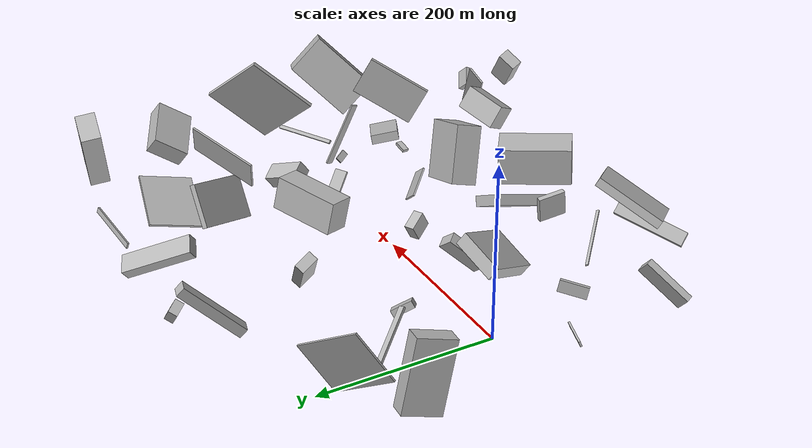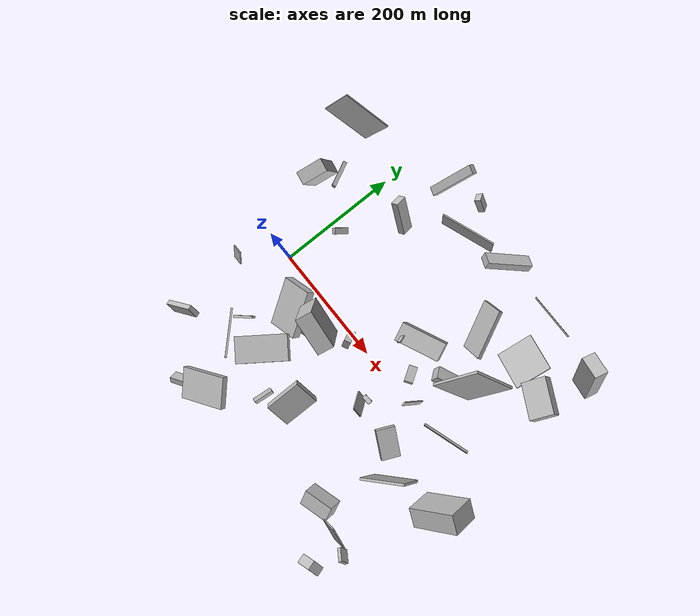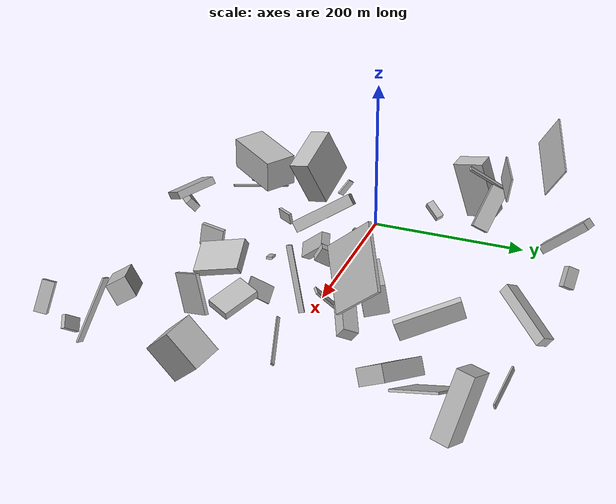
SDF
<sdf version="1.6">
 <world name="default">
  <scene>
   <sky><clouds><speed>12</speed></clouds></sky>
   <ambient>0.4 0.4 0.4 1</ambient>
   <background>0.7 0.7 0.7 1</background>
   <shadows>1</shadows>
  </scene>
  <gravity>0 0 -9.8066</gravity>
  <magnetic_field>6e-06 2.3e-05 -4.2e-05</magnetic_field>
  <physics default="0" name="default_physics" type="ode">
   <ode>
    <solver>
     <type>quick</type>
     <iters>10</iters>
     <sor>1.0</sor>
     <use_dynamic_moi_rescaling>0</use_dynamic_moi_rescaling>
    </solver>
    <constraints>
     <cfm>0</cfm>
     <erp>0.2</erp>
     <contact_max_correcting_vel>100</contact_max_correcting_vel>
     <contact_surface_layer>0.001</contact_surface_layer>
    </constraints>
   </ode>
   <max_step_size>0.004</max_step_size>
   <real_time_factor>1</real_time_factor>
   <real_time_update_rate>250</real_time_update_rate>
  </physics>
  <light name="sun" type="directional">
   <pose>0 0 10 0 0 0</pose>
   <diffuse>0.8 0.8 0.8 1</diffuse>
   <specular>0.2 0.2 0.2 1</specular>
   <attenuation>
    <range>1000</range>
    <constant>0.9</constant>
    <linear>0.01</linear>
    <quadratic>0.001</quadratic>
   </attenuation>
   <direction>-0.5 0.1 -0.9</direction>
  </light>
  <model name="building_1">
   <static>0</static>
   <pose>338.6328816949489 -208.21183348277424 46.11304198322759 0.4572288680553274 -1.023384175593099 -1.6443028458194113</pose>
   <link name="link">
    <gravity>0</gravity>
    <pose>0 0 13.0 0 0 0</pose>
    <collision name="collision"><geometry><box><size>27 48 26</size></box></geometry></collision>
    <visual name="visual">
     <cast_shadows>0</cast_shadows>
     <geometry><box><size>27 48 26</size></box></geometry>
     <material>
      <script>
       <uri>model://HANNAS_wall/materials/scripts</uri>
       <uri>model://HANNAS_wall/materials/textures</uri>
       <name>vrc/HANNAS_wall</name>
      </script>
     </material>
    </visual>
   </link>
  </model>
  <model name="building_2">
   <static>0</static>
   <pose>326.370583474668 -61.1838974823882 55.36963363870868 -0.19229323015173608 0.2361429934656292 -0.48336720357062135</pose>
   <link name="link">
    <gravity>0</gravity>
    <pose>0 0 5.0 0 0 0</pose>
    <collision name="collision"><geometry><box><size>48 30 10</size></box></geometry></collision>
    <visual name="visual">
     <cast_shadows>0</cast_shadows>
     <geometry><box><size>48 30 10</size></box></geometry>
     <material>
      <script>
       <uri>model://HANNAS_wall/materials/scripts</uri>
       <uri>model://HANNAS_wall/materials/textures</uri>
       <name>vrc/HANNAS_wall</name>
      </script>
     </material>
    </visual>
   </link>
  </model>
  <model name="building_3">
   <static>0</static>
   <pose>168.22404401734244 -13.529662765484698 31.840678436858376 0.0626079481214052 0.513105849578444 2.0409422818210565</pose>
   <link name="link">
    <gravity>0</gravity>
    <pose>0 0 10.0 0 0 0</pose>
    <collision name="collision"><geometry><box><size>21 11 20</size></box></geometry></collision>
    <visual name="visual">
     <cast_shadows>0</cast_shadows>
     <geometry><box><size>21 11 20</size></box></geometry>
     <material>
      <script>
       <uri>model://HANNAS_wall/materials/scripts</uri>
       <uri>model://HANNAS_wall/materials/textures</uri>
       <name>vrc/HANNAS_wall</name>
      </script>
     </material>
    </visual>
   </link>
  </model>
  <model name="building_4">
   <static>0</static>
   <pose>89.21328112535 -102.3202754035337 122.89191621156849 2.0327146724492584 -1.513534038956261 0.4915451744406708</pose>
   <link name="link">
    <gravity>0</gravity>
    <pose>0 0 19.5 0 0 0</pose>
    <collision name="collision"><geometry><box><size>39 75 39</size></box></geometry></collision>
    <visual name="visual">
     <cast_shadows>0</cast_shadows>
     <geometry><box><size>39 75 39</size></box></geometry>
     <material>
      <script>
       <uri>model://HANNAS_wall/materials/scripts</uri>
       <uri>model://HANNAS_wall/materials/textures</uri>
       <name>vrc/HANNAS_wall</name>
      </script>
     </material>
    </visual>
   </link>
  </model>
  <model name="building_5">
   <static>0</static>
   <pose>240.8950151724281 80.02816638658423 37.09292190675885 0.10582511486270119 0.15967997886610574 -1.1332028884733665</pose>
   <link name="link">
    <gravity>0</gravity>
    <pose>0 0 18.0 0 0 0</pose>
    <collision name="collision"><geometry><box><size>30 73 36</size></box></geometry></collision>
    <visual name="visual">
     <cast_shadows>0</cast_shadows>
     <geometry><box><size>30 73 36</size></box></geometry>
     <material>
      <script>
       <uri>model://HANNAS_wall/materials/scripts</uri>
       <uri>model://HANNAS_wall/materials/textures</uri>
       <name>vrc/HANNAS_wall</name>
      </script>
     </material>
    </visual>
   </link>
  </model>
  <model name="building_6">
   <static>0</static>
   <pose>23.178486218286494 90.48624858635793 51.353737311372015 -1.9588664292273428 0.9702372690606684 -2.572702174878882</pose>
   <link name="link">
    <gravity>0</gravity>
    <pose>0 0 5.0 0 0 0</pose>
    <collision name="collision"><geometry><box><size>8 24 10</size></box></geometry></collision>
    <visual name="visual">
     <cast_shadows>0</cast_shadows>
     <geometry><box><size>8 24 10</size></box></geometry>
     <material>
      <script>
       <uri>model://HANNAS_wall/materials/scripts</uri>
       <uri>model://HANNAS_wall/materials/textures</uri>
       <name>vrc/HANNAS_wall</name>
      </script>
     </material>
    </visual>
   </link>
  </model>
  <model name="building_7">
   <static>0</static>
   <pose>250.47606680856293 -43.758174373934196 79.02998661161615 -1.3215775211526049 0.06926389244565694 -1.4680392764214167</pose>
   <link name="link">
    <gravity>0</gravity>
    <pose>0 0 7.0 0 0 0</pose>
    <collision name="collision"><geometry><box><size>7 3 14</size></box></geometry></collision>
    <visual name="visual">
     <cast_shadows>0</cast_shadows>
     <geometry><box><size>7 3 14</size></box></geometry>
     <material>
      <script>
       <uri>model://HANNAS_wall/materials/scripts</uri>
       <uri>model://HANNAS_wall/materials/textures</uri>
       <name>vrc/HANNAS_wall</name>
      </script>
     </material>
    </visual>
   </link>
  </model>
  <model name="building_8">
   <static>0</static>
   <pose>395.5038406000807 173.60981117347646 64.98285832230383 -1.2659726374269156 0.5487515739228904 -1.9215913843418335</pose>
   <link name="link">
    <gravity>0</gravity>
    <pose>0 0 29.5 0 0 0</pose>
    <collision name="collision"><geometry><box><size>40 20 59</size></box></geometry></collision>
    <visual name="visual">
     <cast_shadows>0</cast_shadows>
     <geometry><box><size>40 20 59</size></box></geometry>
     <material>
      <script>
       <uri>model://HANNAS_wall/materials/scripts</uri>
       <uri>model://HANNAS_wall/materials/textures</uri>
       <name>vrc/HANNAS_wall</name>
      </script>
     </material>
    </visual>
   </link>
  </model>
  <model name="building_9">
   <static>0</static>
   <pose>247.15976827285297 -48.00724390021814 20.384949326163664 -0.8327314708521012 0.513166770340597 -2.0857333946233414</pose>
   <link name="link">
    <gravity>0</gravity>
    <pose>0 0 17.0 0 0 0</pose>
    <collision name="collision"><geometry><box><size>2 22 34</size></box></geometry></collision>
    <visual name="visual">
     <cast_shadows>0</cast_shadows>
     <geometry><box><size>2 22 34</size></box></geometry>
     <material>
      <script>
       <uri>model://HANNAS_wall/materials/scripts</uri>
       <uri>model://HANNAS_wall/materials/textures</uri>
       <name>vrc/HANNAS_wall</name>
      </script>
     </material>
    </visual>
   </link>
  </model>
  <model name="building_10">
   <static>0</static>
   <pose>187.33312188509382 -110.42968778057674 29.738503021701213 -1.8818112404174425 -0.4873807845101981 -3.0088287167011507</pose>
   <link name="link">
    <gravity>0</gravity>
    <pose>0 0 31.5 0 0 0</pose>
    <collision name="collision"><geometry><box><size>44 12 63</size></box></geometry></collision>
    <visual name="visual">
     <cast_shadows>0</cast_shadows>
     <geometry><box><size>44 12 63</size></box></geometry>
     <material>
      <script>
       <uri>model://HANNAS_wall/materials/scripts</uri>
       <uri>model://HANNAS_wall/materials/textures</uri>
       <name>vrc/HANNAS_wall</name>
      </script>
     </material>
    </visual>
   </link>
  </model>
  <model name="building_11">
   <static>0</static>
   <pose>112.55504870964995 -41.66017299910679 29.174540301287415 2.5463542830096872 -0.7069111268233962 1.0839916701709835</pose>
   <link name="link">
    <gravity>0</gravity>
    <pose>0 0 10.0 0 0 0</pose>
    <collision name="collision"><geometry><box><size>49 12 20</size></box></geometry></collision>
    <visual name="visual">
     <cast_shadows>0</cast_shadows>
     <geometry><box><size>49 12 20</size></box></geometry>
     <material>
      <script>
       <uri>model://HANNAS_wall/materials/scripts</uri>
       <uri>model://HANNAS_wall/materials/textures</uri>
       <name>vrc/HANNAS_wall</name>
      </script>
     </material>
    </visual>
   </link>
  </model>
  <model name="building_12">
   <static>0</static>
   <pose>71.23566438202866 -172.50643372856476 60.25383047438223 -2.327244930818883 -1.224562865764076 1.5599239814738401</pose>
   <link name="link">
    <gravity>0</gravity>
    <pose>0 0 40.0 0 0 0</pose>
    <collision name="collision"><geometry><box><size>2 3 80</size></box></geometry></collision>
    <visual name="visual">
     <cast_shadows>0</cast_shadows>
     <geometry><box><size>2 3 80</size></box></geometry>
     <material>
      <script>
       <uri>model://HANNAS_wall/materials/scripts</uri>
       <uri>model://HANNAS_wall/materials/textures</uri>
       <name>vrc/HANNAS_wall</name>
      </script>
     </material>
    </visual>
   </link>
  </model>
  <model name="building_13">
   <static>0</static>
   <pose>-43.65097188481653 -61.97770021165047 22.92044745692983 -2.2259189441574847 0.42913450245115947 1.287272131480472</pose>
   <link name="link">
    <gravity>0</gravity>
    <pose>0 0 11.5 0 0 0</pose>
    <collision name="collision"><geometry><box><size>2 23 23</size></box></geometry></collision>
    <visual name="visual">
     <cast_shadows>0</cast_shadows>
     <geometry><box><size>2 23 23</size></box></geometry>
     <material>
      <script>
       <uri>model://HANNAS_wall/materials/scripts</uri>
       <uri>model://HANNAS_wall/materials/textures</uri>
       <name>vrc/HANNAS_wall</name>
      </script>
     </material>
    </visual>
   </link>
  </model>
  <model name="building_14">
   <static>0</static>
   <pose>309.1904975737257 65.76811558177911 44.7926098493723 -0.43887572906305355 -0.465129263502837 -0.9322276968183582</pose>
   <link name="link">
    <gravity>0</gravity>
    <pose>0 0 8.0 0 0 0</pose>
    <collision name="collision"><geometry><box><size>20 43 16</size></box></geometry></collision>
    <visual name="visual">
     <cast_shadows>0</cast_shadows>
     <geometry><box><size>20 43 16</size></box></geometry>
     <material>
      <script>
       <uri>model://HANNAS_wall/materials/scripts</uri>
       <uri>model://HANNAS_wall/materials/textures</uri>
       <name>vrc/HANNAS_wall</name>
      </script>
     </material>
    </visual>
   </link>
  </model>
  <model name="building_15">
   <static>0</static>
   <pose>385.6673655762786 -213.3494130210364 45.32864751154012 2.0888946115282674 -0.9676655794925265 2.758086803733049</pose>
   <link name="link">
    <gravity>0</gravity>
    <pose>0 0 1.0 0 0 0</pose>
    <collision name="collision"><geometry><box><size>80 23 2</size></box></geometry></collision>
    <visual name="visual">
     <cast_shadows>0</cast_shadows>
     <geometry><box><size>80 23 2</size></box></geometry>
     <material>
      <script>
       <uri>model://HANNAS_wall/materials/scripts</uri>
       <uri>model://HANNAS_wall/materials/textures</uri>
       <name>vrc/HANNAS_wall</name>
      </script>
     </material>
    </visual>
   </link>
  </model>
  <model name="building_16">
   <static>0</static>
   <pose>303.35936867569797 9.669289088509869 87.95902885679925 2.4005804729496547 1.2054157736602324 0.8802027306928133</pose>
   <link name="link">
    <gravity>0</gravity>
    <pose>0 0 3.5 0 0 0</pose>
    <collision name="collision"><geometry><box><size>80 2 7</size></box></geometry></collision>
    <visual name="visual">
     <cast_shadows>0</cast_shadows>
     <geometry><box><size>80 2 7</size></box></geometry>
     <material>
      <script>
       <uri>model://HANNAS_wall/materials/scripts</uri>
       <uri>model://HANNAS_wall/materials/textures</uri>
       <name>vrc/HANNAS_wall</name>
      </script>
     </material>
    </visual>
   </link>
  </model>
  <model name="building_17">
   <static>0</static>
   <pose>370.3239939297324 214.36255686929604 28.40209971229611 1.8544793708758611 -0.4393777092770607 -0.24323230617416094</pose>
   <link name="link">
    <gravity>0</gravity>
    <pose>0 0 30.5 0 0 0</pose>
    <collision name="collision"><geometry><box><size>65 3 61</size></box></geometry></collision>
    <visual name="visual">
     <cast_shadows>0</cast_shadows>
     <geometry><box><size>65 3 61</size></box></geometry>
     <material>
      <script>
       <uri>model://HANNAS_wall/materials/scripts</uri>
       <uri>model://HANNAS_wall/materials/textures</uri>
       <name>vrc/HANNAS_wall</name>
      </script>
     </material>
    </visual>
   </link>
  </model>
  <model name="building_18">
   <static>0</static>
   <pose>-44.08732819850629 -182.19958805405935 36.49535094313417 2.4711410923841997 0.31266463031677244 1.9545019871675613</pose>
   <link name="link">
    <gravity>0</gravity>
    <pose>0 0 10.5 0 0 0</pose>
    <collision name="collision"><geometry><box><size>8 56 21</size></box></geometry></collision>
    <visual name="visual">
     <cast_shadows>0</cast_shadows>
     <geometry><box><size>8 56 21</size></box></geometry>
     <material>
      <script>
       <uri>model://HANNAS_wall/materials/scripts</uri>
       <uri>model://HANNAS_wall/materials/textures</uri>
       <name>vrc/HANNAS_wall</name>
      </script>
     </material>
    </visual>
   </link>
  </model>
  <model name="building_19">
   <static>0</static>
   <pose>368.4411346294443 -91.30569417470106 84.56187963490568 1.6128923421416628 1.0999573084103693 0.8713865351303532</pose>
   <link name="link">
    <gravity>0</gravity>
    <pose>0 0 2.0 0 0 0</pose>
    <collision name="collision"><geometry><box><size>47 73 4</size></box></geometry></collision>
    <visual name="visual">
     <cast_shadows>0</cast_shadows>
     <geometry><box><size>47 73 4</size></box></geometry>
     <material>
      <script>
       <uri>model://HANNAS_wall/materials/scripts</uri>
       <uri>model://HANNAS_wall/materials/textures</uri>
       <name>vrc/HANNAS_wall</name>
      </script>
     </material>
    </visual>
   </link>
  </model>
  <model name="building_20">
   <static>0</static>
   <pose>71.20246633546083 -50.16166786804449 50.75045880358577 2.6208232122685673 -0.4435798415892773 2.0812010661827776</pose>
   <link name="link">
    <gravity>0</gravity>
    <pose>0 0 7.5 0 0 0</pose>
    <collision name="collision"><geometry><box><size>80 51 15</size></box></geometry></collision>
    <visual name="visual">
     <cast_shadows>0</cast_shadows>
     <geometry><box><size>80 51 15</size></box></geometry>
     <material>
      <script>
       <uri>model://HANNAS_wall/materials/scripts</uri>
       <uri>model://HANNAS_wall/materials/textures</uri>
       <name>vrc/HANNAS_wall</name>
      </script>
     </material>
    </visual>
   </link>
  </model>
  <model name="building_21">
   <static>0</static>
   <pose>102.55716518397804 -244.79936414993392 46.77603564303312 1.0683628899889894 -1.0235325301921319 -1.9248350715982212</pose>
   <link name="link">
    <gravity>0</gravity>
    <pose>0 0 25.0 0 0 0</pose>
    <collision name="collision"><geometry><box><size>10 80 50</size></box></geometry></collision>
    <visual name="visual">
     <cast_shadows>0</cast_shadows>
     <geometry><box><size>10 80 50</size></box></geometry>
     <material>
      <script>
       <uri>model://HANNAS_wall/materials/scripts</uri>
       <uri>model://HANNAS_wall/materials/textures</uri>
       <name>vrc/HANNAS_wall</name>
      </script>
     </material>
    </visual>
   </link>
  </model>
  <model name="building_22">
   <static>0</static>
   <pose>287.5756499765995 162.85952351488433 55.61171762824705 -1.0304399685162626 -0.3129899035539973 2.0570425210511822</pose>
   <link name="link">
    <gravity>0</gravity>
    <pose>0 0 3.0 0 0 0</pose>
    <collision name="collision"><geometry><box><size>80 47 6</size></box></geometry></collision>
    <visual name="visual">
     <cast_shadows>0</cast_shadows>
     <geometry><box><size>80 47 6</size></box></geometry>
     <material>
      <script>
       <uri>model://HANNAS_wall/materials/scripts</uri>
       <uri>model://HANNAS_wall/materials/textures</uri>
       <name>vrc/HANNAS_wall</name>
      </script>
     </material>
    </visual>
   </link>
  </model>
  <model name="building_23">
   <static>0</static>
   <pose>205.28862027843343 230.2512990216993 66.82112827373452 2.0523521751146507 0.48211887015066285 2.7024676406422294</pose>
   <link name="link">
    <gravity>0</gravity>
    <pose>0 0 40.0 0 0 0</pose>
    <collision name="collision"><geometry><box><size>21 13 80</size></box></geometry></collision>
    <visual name="visual">
     <cast_shadows>0</cast_shadows>
     <geometry><box><size>21 13 80</size></box></geometry>
     <material>
      <script>
       <uri>model://HANNAS_wall/materials/scripts</uri>
       <uri>model://HANNAS_wall/materials/textures</uri>
       <name>vrc/HANNAS_wall</name>
      </script>
     </material>
    </visual>
   </link>
  </model>
  <model name="building_24">
   <static>0</static>
   <pose>66.2181470748453 -235.75113678840933 20.199080257436634 0.3548234627329046 0.6969542208967269 -0.7276177786905893</pose>
   <link name="link">
    <gravity>0</gravity>
    <pose>0 0 8.0 0 0 0</pose>
    <collision name="collision"><geometry><box><size>10 80 16</size></box></geometry></collision>
    <visual name="visual">
     <cast_shadows>0</cast_shadows>
     <geometry><box><size>10 80 16</size></box></geometry>
     <material>
      <script>
       <uri>model://HANNAS_wall/materials/scripts</uri>
       <uri>model://HANNAS_wall/materials/textures</uri>
       <name>vrc/HANNAS_wall</name>
      </script>
     </material>
    </visual>
   </link>
  </model>
  <model name="building_25">
   <static>0</static>
   <pose>29.219839794638826 -118.52452829965428 11.045401352206095 -2.9572581648138763 0.09042901204387054 -0.7274351207023483</pose>
   <link name="link">
    <gravity>0</gravity>
    <pose>0 0 7.0 0 0 0</pose>
    <collision name="collision"><geometry><box><size>4 32 14</size></box></geometry></collision>
    <visual name="visual">
     <cast_shadows>0</cast_shadows>
     <geometry><box><size>4 32 14</size></box></geometry>
     <material>
      <script>
       <uri>model://HANNAS_wall/materials/scripts</uri>
       <uri>model://HANNAS_wall/materials/textures</uri>
       <name>vrc/HANNAS_wall</name>
      </script>
     </material>
    </visual>
   </link>
  </model>
  <model name="building_26">
   <static>0</static>
   <pose>460.90170246255144 -45.672113673512385 55.81639384183421 0.7612308609746212 0.3091462837370078 -0.420320818513701</pose>
   <link name="link">
    <gravity>0</gravity>
    <pose>0 0 24.0 0 0 0</pose>
    <collision name="collision"><geometry><box><size>33 80 48</size></box></geometry></collision>
    <visual name="visual">
     <cast_shadows>0</cast_shadows>
     <geometry><box><size>33 80 48</size></box></geometry>
     <material>
      <script>
       <uri>model://HANNAS_wall/materials/scripts</uri>
       <uri>model://HANNAS_wall/materials/textures</uri>
       <name>vrc/HANNAS_wall</name>
      </script>
     </material>
    </visual>
   </link>
  </model>
  <model name="building_27">
   <static>0</static>
   <pose>-51.95055127516923 160.15596435888608 55.11931893049109 -0.90368737117193 -0.28491136804036166 -2.777121229837746</pose>
   <link name="link">
    <gravity>0</gravity>
    <pose>0 0 31.0 0 0 0</pose>
    <collision name="collision"><geometry><box><size>6 3 62</size></box></geometry></collision>
    <visual name="visual">
     <cast_shadows>0</cast_shadows>
     <geometry><box><size>6 3 62</size></box></geometry>
     <material>
      <script>
       <uri>model://HANNAS_wall/materials/scripts</uri>
       <uri>model://HANNAS_wall/materials/textures</uri>
       <name>vrc/HANNAS_wall</name>
      </script>
     </material>
    </visual>
   </link>
  </model>
  <model name="building_28">
   <static>0</static>
   <pose>424.73156798757617 -220.71956087857285 39.14166668272482 0.5758522341225835 -0.6103329534188533 -0.5272021191147985</pose>
   <link name="link">
    <gravity>0</gravity>
    <pose>0 0 8.0 0 0 0</pose>
    <collision name="collision"><geometry><box><size>22 6 16</size></box></geometry></collision>
    <visual name="visual">
     <cast_shadows>0</cast_shadows>
     <geometry><box><size>22 6 16</size></box></geometry>
     <material>
      <script>
       <uri>model://HANNAS_wall/materials/scripts</uri>
       <uri>model://HANNAS_wall/materials/textures</uri>
       <name>vrc/HANNAS_wall</name>
      </script>
     </material>
    </visual>
   </link>
  </model>
  <model name="building_29">
   <static>0</static>
   <pose>340.0533579107089 262.82959527295094 28.45691827376335 3.114865772242141 -0.30338868980504985 1.578251997082732</pose>
   <link name="link">
    <gravity>0</gravity>
    <pose>0 0 3.0 0 0 0</pose>
    <collision name="collision"><geometry><box><size>2 80 6</size></box></geometry></collision>
    <visual name="visual">
     <cast_shadows>0</cast_shadows>
     <geometry><box><size>2 80 6</size></box></geometry>
     <material>
      <script>
       <uri>model://HANNAS_wall/materials/scripts</uri>
       <uri>model://HANNAS_wall/materials/textures</uri>
       <name>vrc/HANNAS_wall</name>
      </script>
     </material>
    </visual>
   </link>
  </model>
  <model name="building_30">
   <static>0</static>
   <pose>-79.6872797148966 120.12494198973218 45.08479052369217 1.7171976342521362 -0.24204502961474492 1.3613192484201349</pose>
   <link name="link">
    <gravity>0</gravity>
    <pose>0 0 10.5 0 0 0</pose>
    <collision name="collision"><geometry><box><size>43 80 21</size></box></geometry></collision>
    <visual name="visual">
     <cast_shadows>0</cast_shadows>
     <geometry><box><size>43 80 21</size></box></geometry>
     <material>
      <script>
       <uri>model://HANNAS_wall/materials/scripts</uri>
       <uri>model://HANNAS_wall/materials/textures</uri>
       <name>vrc/HANNAS_wall</name>
      </script>
     </material>
    </visual>
   </link>
  </model>
  <model name="building_31">
   <static>0</static>
   <pose>407.9351687721071 -267.69878754865476 42.368308503978625 0.3059746379055305 0.5123202365271124 -2.6976083604831085</pose>
   <link name="link">
    <gravity>0</gravity>
    <pose>0 0 19.0 0 0 0</pose>
    <collision name="collision"><geometry><box><size>22 15 38</size></box></geometry></collision>
    <visual name="visual">
     <cast_shadows>0</cast_shadows>
     <geometry><box><size>22 15 38</size></box></geometry>
     <material>
      <script>
       <uri>model://HANNAS_wall/materials/scripts</uri>
       <uri>model://HANNAS_wall/materials/textures</uri>
       <name>vrc/HANNAS_wall</name>
      </script>
     </material>
    </visual>
   </link>
  </model>
  <model name="building_32">
   <static>0</static>
   <pose>127.71363544036052 198.1878992757621 179.64245772700184 1.427029769323797 0.17112363810895834 1.8711808278459703</pose>
   <link name="link">
    <gravity>0</gravity>
    <pose>0 0 40.0 0 0 0</pose>
    <collision name="collision"><geometry><box><size>2 27 80</size></box></geometry></collision>
    <visual name="visual">
     <cast_shadows>0</cast_shadows>
     <geometry><box><size>2 27 80</size></box></geometry>
     <material>
      <script>
       <uri>model://HANNAS_wall/materials/scripts</uri>
       <uri>model://HANNAS_wall/materials/textures</uri>
       <name>vrc/HANNAS_wall</name>
      </script>
     </material>
    </visual>
   </link>
  </model>
  <model name="building_33">
   <static>0</static>
   <pose>218.5294086052882 51.16808144692837 114.51440942938939 -2.179117896230985 -0.45078457117646753 -1.1812662151421771</pose>
   <link name="link">
    <gravity>0</gravity>
    <pose>0 0 1.0 0 0 0</pose>
    <collision name="collision"><geometry><box><size>12 7 2</size></box></geometry></collision>
    <visual name="visual">
     <cast_shadows>0</cast_shadows>
     <geometry><box><size>12 7 2</size></box></geometry>
     <material>
      <script>
       <uri>model://HANNAS_wall/materials/scripts</uri>
       <uri>model://HANNAS_wall/materials/textures</uri>
       <name>vrc/HANNAS_wall</name>
      </script>
     </material>
    </visual>
   </link>
  </model>
  <model name="building_34">
   <static>0</static>
   <pose>121.04834842618618 -22.842491705173266 113.8091049307552 -0.25146928332059093 -0.3639365387383141 3.030465572857391</pose>
   <link name="link">
    <gravity>0</gravity>
    <pose>0 0 30.0 0 0 0</pose>
    <collision name="collision"><geometry><box><size>60 26 60</size></box></geometry></collision>
    <visual name="visual">
     <cast_shadows>0</cast_shadows>
     <geometry><box><size>60 26 60</size></box></geometry>
     <material>
      <script>
       <uri>model://HANNAS_wall/materials/scripts</uri>
       <uri>model://HANNAS_wall/materials/textures</uri>
       <name>vrc/HANNAS_wall</name>
      </script>
     </material>
    </visual>
   </link>
  </model>
  <model name="building_35">
   <static>0</static>
   <pose>276.59955034486 20.830866556086338 59.36384532989544 3.1135987545399297 -0.756784701684981 2.1525675501244796</pose>
   <link name="link">
    <gravity>0</gravity>
    <pose>0 0 19.0 0 0 0</pose>
    <collision name="collision"><geometry><box><size>3 14 38</size></box></geometry></collision>
    <visual name="visual">
     <cast_shadows>0</cast_shadows>
     <geometry><box><size>3 14 38</size></box></geometry>
     <material>
      <script>
       <uri>model://HANNAS_wall/materials/scripts</uri>
       <uri>model://HANNAS_wall/materials/textures</uri>
       <name>vrc/HANNAS_wall</name>
      </script>
     </material>
    </visual>
   </link>
  </model>
  <model name="building_36">
   <static>0</static>
   <pose>445.19474664545055 252.36989480652898 63.095638609986196 -1.2434511140391429 -1.1535880756588885 2.583751376735574</pose>
   <link name="link">
    <gravity>0</gravity>
    <pose>0 0 11.0 0 0 0</pose>
    <collision name="collision"><geometry><box><size>80 36 22</size></box></geometry></collision>
    <visual name="visual">
     <cast_shadows>0</cast_shadows>
     <geometry><box><size>80 36 22</size></box></geometry>
     <material>
      <script>
       <uri>model://HANNAS_wall/materials/scripts</uri>
       <uri>model://HANNAS_wall/materials/textures</uri>
       <name>vrc/HANNAS_wall</name>
      </script>
     </material>
    </visual>
   </link>
  </model>
  <model name="building_37">
   <static>0</static>
   <pose>85.92853487959195 266.13603911150494 76.50298736278958 1.5291843142894128 -0.8193067124503706 -1.8492577391303837</pose>
   <link name="link">
    <gravity>0</gravity>
    <pose>0 0 7.0 0 0 0</pose>
    <collision name="collision"><geometry><box><size>11 80 14</size></box></geometry></collision>
    <visual name="visual">
     <cast_shadows>0</cast_shadows>
     <geometry><box><size>11 80 14</size></box></geometry>
     <material>
      <script>
       <uri>model://HANNAS_wall/materials/scripts</uri>
       <uri>model://HANNAS_wall/materials/textures</uri>
       <name>vrc/HANNAS_wall</name>
      </script>
     </material>
    </visual>
   </link>
  </model>
  <model name="building_38">
   <static>0</static>
   <pose>133.23427208688435 288.9285311379749 52.58512448622194 2.1269643525509707 -0.49622148566505814 -1.018557743532684</pose>
   <link name="link">
    <gravity>0</gravity>
    <pose>0 0 5.0 0 0 0</pose>
    <collision name="collision"><geometry><box><size>15 25 10</size></box></geometry></collision>
    <visual name="visual">
     <cast_shadows>0</cast_shadows>
     <geometry><box><size>15 25 10</size></box></geometry>
     <material>
      <script>
       <uri>model://HANNAS_wall/materials/scripts</uri>
       <uri>model://HANNAS_wall/materials/textures</uri>
       <name>vrc/HANNAS_wall</name>
      </script>
     </material>
    </visual>
   </link>
  </model>
  <model name="building_39">
   <static>0</static>
   <pose>362.3548044862774 102.66221118734876 109.6823961950574 -0.7971371888911848 0.354868815073681 2.4189137590117005</pose>
   <link name="link">
    <gravity>0</gravity>
    <pose>0 0 40.0 0 0 0</pose>
    <collision name="collision"><geometry><box><size>4 80 80</size></box></geometry></collision>
    <visual name="visual">
     <cast_shadows>0</cast_shadows>
     <geometry><box><size>4 80 80</size></box></geometry>
     <material>
      <script>
       <uri>model://HANNAS_wall/materials/scripts</uri>
       <uri>model://HANNAS_wall/materials/textures</uri>
       <name>vrc/HANNAS_wall</name>
      </script>
     </material>
    </visual>
   </link>
  </model>
  <model name="building_40">
   <static>0</static>
   <pose>78.92437913602616 172.7996105025748 96.21657433079861 2.1788415271596318 -0.4591179999848918 -1.372949388759164</pose>
   <link name="link">
    <gravity>0</gravity>
    <pose>0 0 5.5 0 0 0</pose>
    <collision name="collision"><geometry><box><size>20 56 11</size></box></geometry></collision>
    <visual name="visual">
     <cast_shadows>0</cast_shadows>
     <geometry><box><size>20 56 11</size></box></geometry>
     <material>
      <script>
       <uri>model://HANNAS_wall/materials/scripts</uri>
       <uri>model://HANNAS_wall/materials/textures</uri>
       <name>vrc/HANNAS_wall</name>
      </script>
     </material>
    </visual>
   </link>
  </model>
  <model name="building_41">
   <static>0</static>
   <pose>-52.54876163887103 224.61320991362516 76.10042600248586 -0.4509525773507627 -0.9491161836248354 0.9382164391387003</pose>
   <link name="link">
    <gravity>0</gravity>
    <pose>0 0 40.0 0 0 0</pose>
    <collision name="collision"><geometry><box><size>60 2 80</size></box></geometry></collision>
    <visual name="visual">
     <cast_shadows>0</cast_shadows>
     <geometry><box><size>60 2 80</size></box></geometry>
     <material>
      <script>
       <uri>model://HANNAS_wall/materials/scripts</uri>
       <uri>model://HANNAS_wall/materials/textures</uri>
       <name>vrc/HANNAS_wall</name>
      </script>
     </material>
    </visual>
   </link>
  </model>
  <model name="building_42">
   <static>0</static>
   <pose>379.5328550744763 12.967203200718552 52.43119926403094 2.42424941424203 0.12848798565952935 0.30752932674127936</pose>
   <link name="link">
    <gravity>0</gravity>
    <pose>0 0 1.0 0 0 0</pose>
    <collision name="collision"><geometry><box><size>80 4 2</size></box></geometry></collision>
    <visual name="visual">
     <cast_shadows>0</cast_shadows>
     <geometry><box><size>80 4 2</size></box></geometry>
     <material>
      <script>
       <uri>model://HANNAS_wall/materials/scripts</uri>
       <uri>model://HANNAS_wall/materials/textures</uri>
       <name>vrc/HANNAS_wall</name>
      </script>
     </material>
    </visual>
   </link>
  </model>
  <model name="building_43">
   <static>0</static>
   <pose>149.27883025706217 -184.07706337030132 27.742193216733757 2.523990561471931 -1.423411189541725 2.103694935778001</pose>
   <link name="link">
    <gravity>0</gravity>
    <pose>0 0 15.5 0 0 0</pose>
    <collision name="collision"><geometry><box><size>29 6 31</size></box></geometry></collision>
    <visual name="visual">
     <cast_shadows>0</cast_shadows>
     <geometry><box><size>29 6 31</size></box></geometry>
     <material>
      <script>
       <uri>model://HANNAS_wall/materials/scripts</uri>
       <uri>model://HANNAS_wall/materials/textures</uri>
       <name>vrc/HANNAS_wall</name>
      </script>
     </material>
    </visual>
   </link>
  </model>
 </world>
</sdf>
